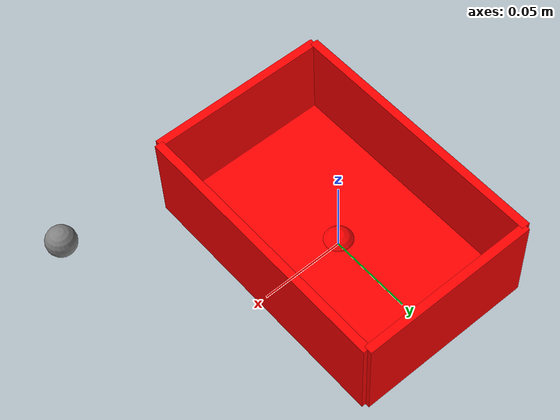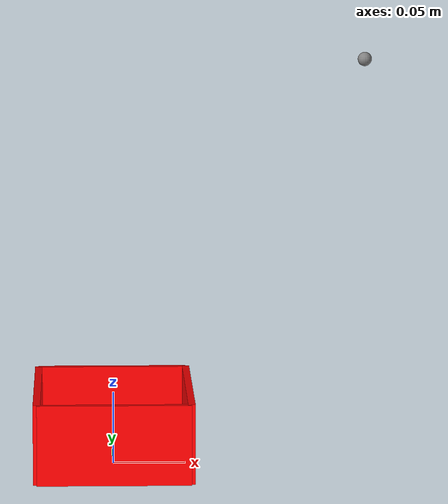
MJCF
<mujoco model="box_red_medium">
    <compiler angle="radian" meshdir="environment_parts/" />
    <asset>
        <!-- Add a red material with plastic-like properties -->
        <material name="red_plastic" rgba="1 0 0 1" shininess="0.8" specular="1"/>
    </asset>
    <worldbody>
        <!-- Uncomment and adjust the light if needed -->
        <body name="Kiste" pos="0 0 0">
            <site name="gripping_point" pos="0.18 0.08 0.275" quat="0 -1 0 0"/>
            <site name="grasp_pop" pos="0 0 0" size="0.01" rgba="1 0 0 1" group="0"/>
            <!-- Adjust the geometries to reflect the dimensions and apply the red plastic material -->
            <geom pos="0 0 0.00275" size="0.0525 0.08 0.0025" type="box" condim="3" name="Kiste_bottom" material="red_plastic"/>
            <geom pos="0.0525 0 0.0275" size="0.0025 0.08 0.0275" type="box" condim="3" name="Kiste_wall1" material="red_plastic"/>
            <geom pos="-0.0525 0 0.0275" size="0.0025 0.08 0.0275" type="box" condim="3" name="Kiste_wall2" material="red_plastic"/>
            <geom pos="0 0.08 0.0275" size="0.0525 0.0025 0.0275" type="box" condim="3" name="Kiste_wall3" material="red_plastic"/>
            <geom pos="0 -0.08 0.0275" size="0.0525 0.0025 0.0275" type="box" condim="3" name="Kiste_wall4" material="red_plastic"/>
        </body>
    </worldbody>
</mujoco>
